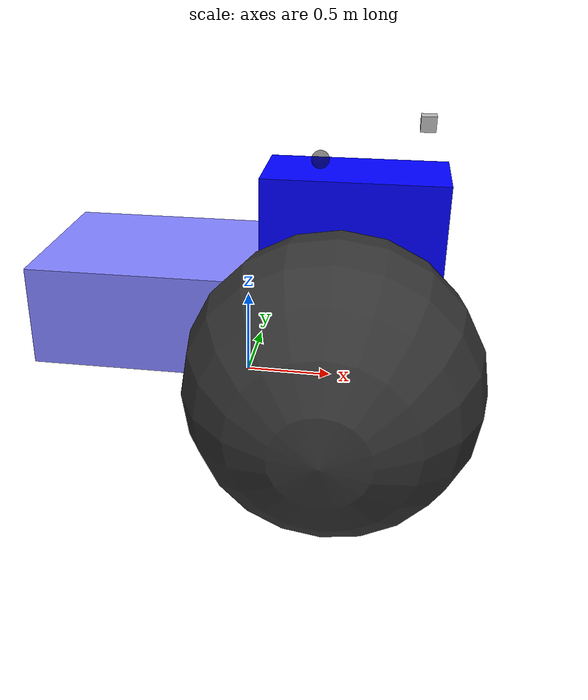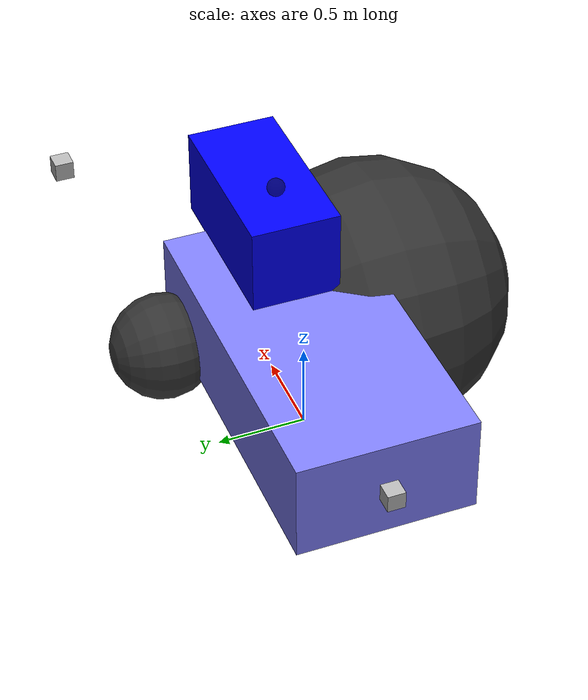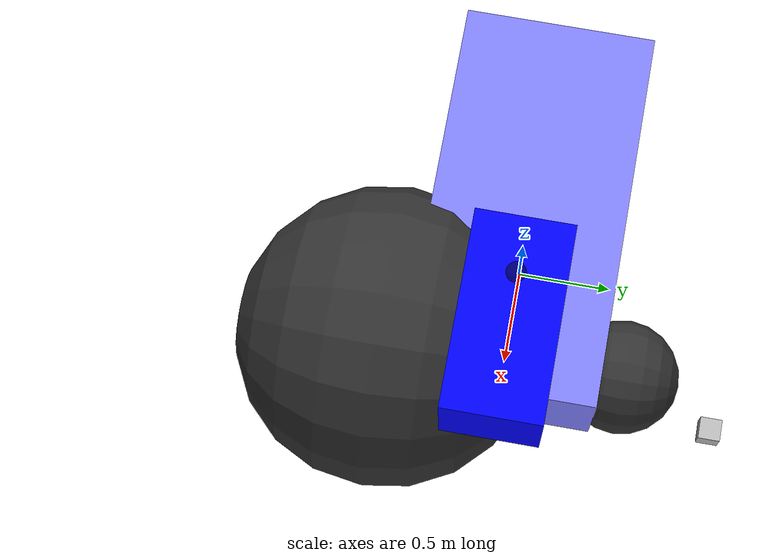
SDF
<sdf version='1.7' xmlns:experimental='http://sdformat.org/schemas/experimental'>
  <world name='world_custom_model'>
    <model name='robot'>
      <model name='vehicle'>
        <pose>0 0 0.325 0 -0 0</pose>

        <link name='chassis'>
          <pose>-0.151427 -0 0.175 0 -0 0</pose>
          <inertial>
            <mass>1.14395</mass>
            <inertia>
              <ixx>0.126164</ixx>
              <ixy>0</ixy>
              <ixz>0</ixz>
              <iyy>0.416519</iyy>
              <iyz>0</iyz>
              <izz>0.481014</izz>
            </inertia>
          </inertial>
          <visual name='visual'>
            <geometry>
              <box>
                <size>2.01142 1 0.568726</size>
              </box>
            </geometry>
            <material>
              <ambient>0.5 0.5 1.0 1</ambient>
              <diffuse>0.5 0.5 1.0 1</diffuse>
              <specular>0.0 0.0 1.0 1</specular>
            </material>
          </visual>
          <collision name='collision'>
            <geometry>
              <box>
                <size>2.01142 1 0.568726</size>
              </box>
            </geometry>
          </collision>

          <!-- removed -->

          <sensor name='camera' type='camera'>
            <pose>-1.06 0 0 0 0 3.14</pose>
            <camera>
              <horizontal_fov>1.047</horizontal_fov>
              <image>
                <width>320</width>
                <height>240</height>
              </image>
              <clip>
                <near>0.1</near>
                <far>100</far>
              </clip>
            </camera>

            <!-- removed -->

            <update_rate>30</update_rate>
            <topic>chassis/camera</topic>
          </sensor>

          <!-- added -->
          <visual name='camera_visual'>
            <pose>-1.06 0 0 0 0 3.14</pose>
            <geometry>
              <box>
                <size>0.1 0.1 0.1</size>
              </box>
            </geometry>
          </visual>
        </link>

        <link name='top'>
          <pose>0.6 0 0.7 0 0 0</pose>

          <collision name='top_collision'>
            <geometry>
              <sphere>
                <radius>0.65</radius>
              </sphere>
            </geometry>
          </collision>
          <!-- replaced with above -->

          <visual name='top_visual' custom:test='foo'>
          <!-- modified with above -->
            <geometry>
              <box>
                <size custom:test='bar'>1 0.5 0.5</size>
                <!-- modified with above -->
              </box>
            </geometry>

            <material>
              <ambient>0 0 1 1</ambient>
              <diffuse>0 0 1 1</diffuse>
            </material>
            <!-- replaced with above -->

            <plugin name="top_plugin2" filename="/path/to/plugin"/>

            <!-- removed -->
          </visual>

          <!-- removed -->

          <visual name='camera_visual'>
            <pose>-0.2 0 0.3 0 0 3.14</pose>

            <geometry>
              <sphere>
                <radius>0.05</radius>
              </sphere>
            </geometry>
            <!-- replaced with above -->

            <material>
              <ambient>0 0 1 1</ambient>
              <diffuse>0 0 0 1</diffuse>
              <!-- modified with above -->

              <!-- removed -->
            </material>
            <plugin name='some_visual_plugin' filename='/path/to/plugin'/>

            <!-- added -->
            <transparency>0.5</transparency>
            <plugin name='some_visual_plugin' filename='/path/to/plugin'/>
            <plugin name='some_visual_plugin' filename='/path/to/plugin'/>
            <plugin name='some_visual_plugin' filename='/path/to/plugin'/>
          </visual>

          <sensor name='cam' type='camera' custom:test='hello'>
            <pose relative_to='__model__'>0.1 0.2 0.3 0 0 0</pose>
            <camera name='top_camera'>
          <!-- modified with above -->
              <horizontal_fov>1.047</horizontal_fov>
              <image>
                <width>1280</width>
                <!-- modified with above -->
                <height>240</height>
              </image>
              <clip custom:test='foo'>
                <near>0.05</near>
                <far>50</far>
              </clip>
              <!-- modified with above -->
            </camera>
            <always_on>1</always_on>
            <update_rate>20</update_rate>
            <!-- modified with above -->
            <visualize>true</visualize>
            <topic>top/cam</topic>
            <!-- modified with above -->
          </sensor>
        </link>

        <joint name='top_to_base' type='fixed'>
          <parent>chassis</parent>
          <child>top</child>
        </joint>
        <link name='left_wheel'>
          <pose>0.554283 0.625029 -0.025 -1.5707 0 0</pose>
          <inertial>
            <mass>2</mass>
            <inertia>
              <ixx>0.145833</ixx>
              <ixy>0</ixy>
              <ixz>0</ixz>
              <iyy>0.145833</iyy>
              <iyz>0</iyz>
              <izz>0.125</izz>
            </inertia>
          </inertial>
          <visual name='visual'>
            <geometry>
              <sphere>
                <radius>0.3</radius>
              </sphere>
            </geometry>
            <material>
              <ambient>0.2 0.2 0.2 1</ambient>
              <diffuse>0.2 0.2 0.2 1</diffuse>
              <specular>0.2 0.2 0.2 1</specular>
            </material>
          </visual>

          <collision name='left_wheel_collision' custom:test="hello">
            <geometry>
              <cylinder>
                <radius>0.2</radius>
                <length>0.3</length>
              </cylinder>
            </geometry>
          </collision>
          <!-- replaced with above -->

        </link>
        <link name='right_wheel'>
          <pose>0.554282 -0.625029 -0.025 -1.5707 0 0</pose>
          <inertial>
            <mass>2</mass>
            <inertia>
              <ixx>0.145833</ixx>
              <ixy>0</ixy>
              <ixz>0</ixz>
              <iyy>0.145833</iyy>
              <iyz>0</iyz>
              <izz>0.125</izz>
            </inertia>
          </inertial>
          <visual name='visual'>
            <geometry>
              <sphere>
                <radius>0.3</radius>
              </sphere>
            </geometry>
            <material>
              <ambient>0.2 0.2 0.2 1</ambient>
              <diffuse>0.2 0.2 0.2 1</diffuse>
              <specular>0.2 0.2 0.2 1</specular>
            </material>
          </visual>

          <collision name='right_wheel_collision'>
            <geometry>
              <cylinder>
                <radius>0.2</radius>
                <length>0.3</length>
              </cylinder>
            </geometry>
          </collision>
          <!-- replaced with above -->

        </link>
        <link name='caster'>
          <pose relative_to='right_wheel'>0 0 0 0 0 0</pose>
          <!-- modified with above -->
          <inertial>
            <mass>0.5</mass>
            <!-- modified with above -->
            <inertia>
              <ixx>0.05</ixx>
              <!-- modified with above -->
              <ixy>0</ixy>
              <ixz>0</ixz>
              <iyy>0.05</iyy>
              <!-- modified with above -->
              <iyz>0</iyz>
              <izz>0.05</izz>
              <!-- modified with above -->
            </inertia>
          </inertial>
          <visual name='visual'>
            <geometry>
              <sphere>
                <radius>0.8</radius>
                <!-- modified with above -->
              </sphere>
            </geometry>
            <material>
              <ambient>0.2 0.2 0.2 1</ambient>
              <diffuse>0.2 0.2 0.2 1</diffuse>
              <specular>1 1 1 1</specular>
              <!-- modified with above -->
            </material>
          </visual>
          <collision name='collision'>
            <geometry>
              <sphere>
                <radius>0.8</radius>
                <!-- modified with above -->
              </sphere>
            </geometry>
          </collision>
        </link>
        <joint name='left_wheel_joint' type='revolute'>
          <parent>chassis</parent>
          <child>left_wheel</child>
          <axis>
            <xyz>0 0 1</xyz>
            <limit>
              <lower>-1.79769e+308</lower>
              <upper>1.79769e+308</upper>
            </limit>
          </axis>
        </joint>
        <joint name='right_wheel_joint' type='revolute'>
          <parent>chassis</parent>
          <child>right_wheel</child>
          <axis>
            <xyz>0 0 1</xyz>
            <limit>
              <lower>-1.79769e+308</lower>
              <upper>1.79769e+308</upper>
            </limit>
          </axis>
        </joint>
        <joint name='caster_wheel' type='ball'>
          <parent>chassis</parent>
          <child>caster</child>
        </joint>

        <model name='nested_models'>
          <pose relative_to='caster'>1 1 1 0 0 0</pose>
          <!-- modified with above -->
          <model name='model1'>
            <link name='link1'>

              <!-- added -->
              <visual name='new_visual'>
                <geometry>
                  <box>
                    <size>0.1 0.1 0.1</size>
                  </box>
                </geometry>
              </visual>

            </link>
          </model>
        </model>

        <!-- added -->
        <link name='new_link'>
          <pose>0 0 0 0 0 0</pose>
          <sensor name='camera_sensor' type='camera'>
            <camera>
              <horizontal_fov>1.047</horizontal_fov>
              <image>
                <width>320</width>
                <height>240</height>
              </image>
              <clip>
                <near>0.1</near>
                <far>100</far>
              </clip>
            </camera>
            <always_on>1</always_on>
            <update_rate>30</update_rate>
            <visualize>true</visualize>
          </sensor>
        </link>

        <!-- added -->
        <link name="link_custom1">
          <!-- modified value from foo to bar-->
          <foo:custom_elem custom:attr='test'>bar</foo:custom_elem>
        </link>

      </model>
    </model>
    <gravity>0 0 -9.8</gravity>
    <magnetic_field>5.5645e-06 2.28758e-05 -4.23884e-05</magnetic_field>
    <atmosphere type='adiabatic'/>
    <physics type='ode'>
      <max_step_size>0.001</max_step_size>
      <real_time_factor>1</real_time_factor>
      <real_time_update_rate>1000</real_time_update_rate>
    </physics>
    <scene>
      <ambient>0.4 0.4 0.4 1</ambient>
      <background>0.7 0.7 0.7 1</background>
      <shadows>true</shadows>
    </scene>
  </world>
</sdf>
